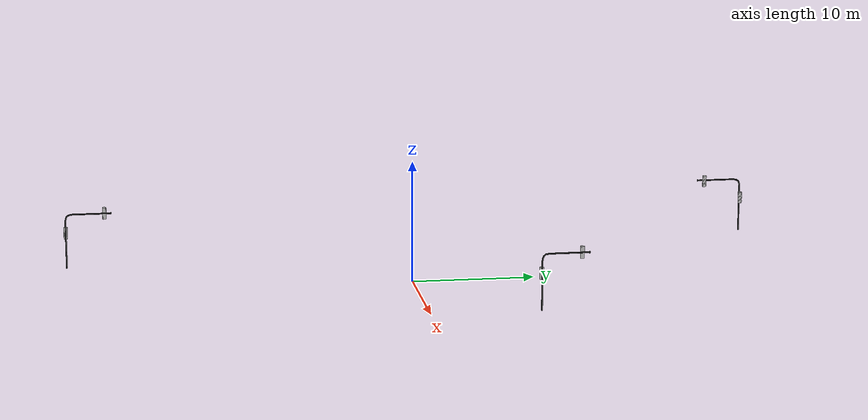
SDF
<?xml version="1.0"?>
<sdf version="1.7">
  <model name="traffic_light_yellow">
    <static>true</static>
    <link name="link">
      <pose>0 0 0 0 0 0</pose>

      <collision name="collision">
        <geometry>
          <mesh>
            <uri>model://home/beraa/ros2_ws/src/simulation/models/traffic_light_yellow/meshes/model.dae</uri>
            <scale>1 1 1</scale>
          </mesh>
        </geometry>
      </collision>

      <visual name="visual">
        <geometry>
          <mesh>
            <uri>model://home/beraa/ros2_ws/src/simulation/models/traffic_light_yellow/meshes/model.dae</uri>
            <scale>1 1 1</scale>
          </mesh>
        </geometry>
      </visual>

    </link>
  </model>
</sdf>
